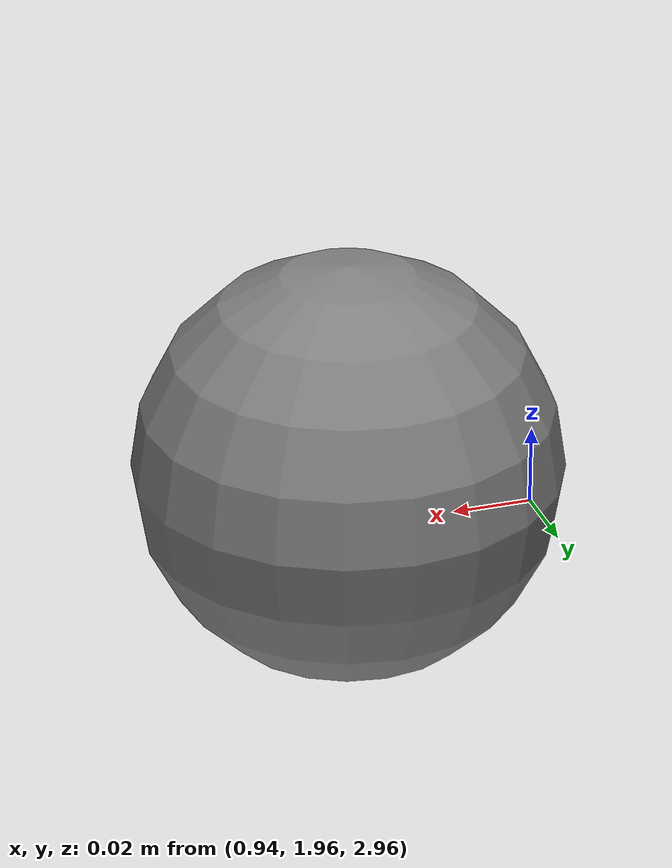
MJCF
<mujoco model="t35">
            <option gravity="0 0 0"/>
            <worldbody>
                <body name="b1" pos="1 2 3">
                    <joint type="free"/>
                    <geom type="sphere" size="0.05" mass="1"/>
                    <site name="s1" pos="0 0 0"/>
                </body>
            </worldbody>
            <sensor>
                <framepos site="s1" reftype="xbody" refname="world"/>
                <framepos site="s1"/>
            </sensor>
        </mujoco>
